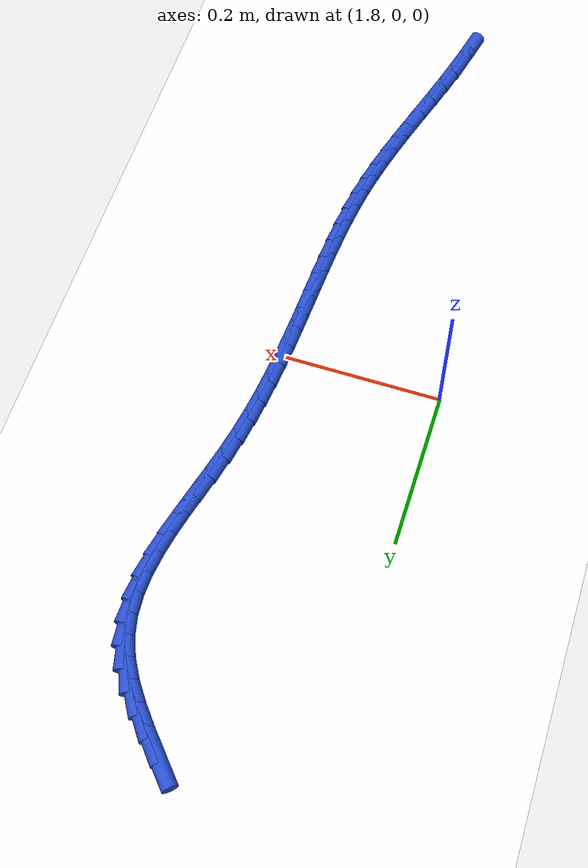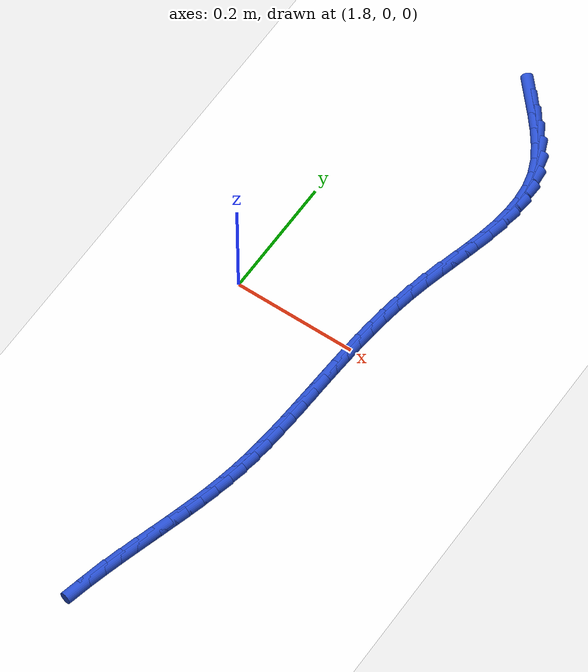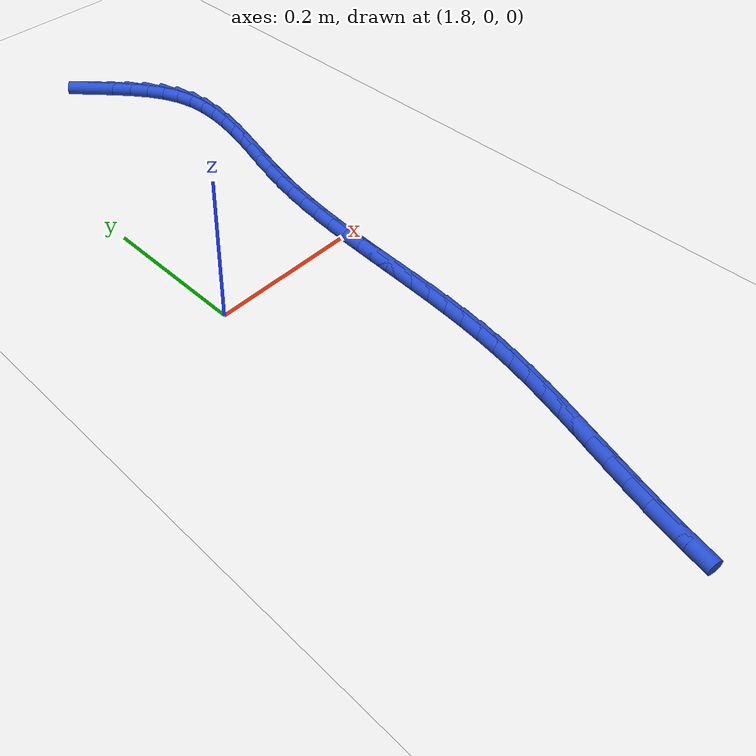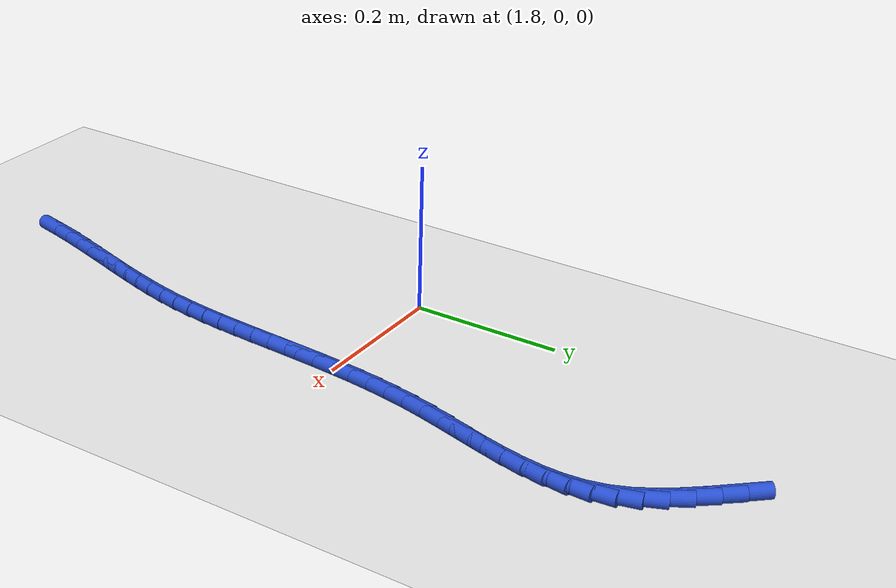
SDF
<sdf version="1.6">
 <world name="default">
  <model name="ground_plane">
   <static>1</static>
   <link name="link">
    <collision name="collision">
     <geometry><plane><normal>0 0 1</normal><size>100 100</size></plane></geometry>
     <surface><friction><ode><mu>100</mu><mu2>50</mu2></ode></friction></surface>
    </collision>
    <visual name="visual">
     <cast_shadows>0</cast_shadows>
     <geometry><plane><normal>0 0 1</normal><size>100 100</size></plane></geometry>
     <material>
      <script><uri>file://media/materials/scripts/gazebo.material</uri><name>Gazebo/WhiteGlow</name></script>
     </material>
    </visual>
   </link>
  </model>
  <model name="line">
   <link name="link_100">
    <pose>1.9794004942073467 0.5174655493958903 0.01 0 1.57 -0.8328999978954689</pose>
    <collision name="collision">
     <geometry><cylinder><radius>0.01</radius><length>0.08</length></cylinder></geometry>
    </collision>
    <visual name="visual">
     <material>
      <script><name>Gazebo/Blue</name><uri>file://media/materials/scripts/gazebo.material</uri></script>
     </material>
     <geometry><cylinder><radius>0.01</radius><length>0.08</length></cylinder></geometry>
    </visual>
   </link>
   <link name="link_101">
    <pose>1.9992368773855778 0.4956490902751773 0.01 0 1.57 -0.8675028361013063</pose>
    <collision name="collision">
     <geometry><cylinder><radius>0.01</radius><length>0.08</length></cylinder></geometry>
    </collision>
    <visual name="visual">
     <material>
      <script><name>Gazebo/Blue</name><uri>file://media/materials/scripts/gazebo.material</uri></script>
     </material>
     <geometry><cylinder><radius>0.01</radius><length>0.08</length></cylinder></geometry>
    </visual>
   </link>
   <link name="link_102">
    <pose>2.0179995701783637 0.47352155422459424 0.01 0 1.57 -0.9322442200639983</pose>
    <collision name="collision">
     <geometry><cylinder><radius>0.01</radius><length>0.08</length></cylinder></geometry>
    </collision>
    <visual name="visual">
     <material>
      <script><name>Gazebo/Blue</name><uri>file://media/materials/scripts/gazebo.material</uri></script>
     </material>
     <geometry><cylinder><radius>0.01</radius><length>0.08</length></cylinder></geometry>
    </visual>
   </link>
   <link name="link_103">
    <pose>2.0348077334677885 0.4508780674210389 0.01 0 1.57 -1.0318191896629265</pose>
    <collision name="collision">
     <geometry><cylinder><radius>0.01</radius><length>0.08</length></cylinder></geometry>
    </collision>
    <visual name="visual">
     <material>
      <script><name>Gazebo/Blue</name><uri>file://media/materials/scripts/gazebo.material</uri></script>
     </material>
     <geometry><cylinder><radius>0.01</radius><length>0.08</length></cylinder></geometry>
    </visual>
   </link>
   <link name="link_104">
    <pose>2.0487805281359344 0.4275137560414088 0.01 0 1.57 -1.1712235007734189</pose>
    <collision name="collision">
     <geometry><cylinder><radius>0.01</radius><length>0.08</length></cylinder></geometry>
    </collision>
    <visual name="visual">
     <material>
      <script><name>Gazebo/Blue</name><uri>file://media/materials/scripts/gazebo.material</uri></script>
     </material>
     <geometry><cylinder><radius>0.01</radius><length>0.08</length></cylinder></geometry>
    </visual>
   </link>
   <link name="link_105">
    <pose>2.0590378778197485 0.40322391940936164 0.01 0 1.57 -1.3371737413123586</pose>
    <collision name="collision">
     <geometry><cylinder><radius>0.01</radius><length>0.08</length></cylinder></geometry>
    </collision>
    <visual name="visual">
     <material>
      <script><name>Gazebo/Blue</name><uri>file://media/materials/scripts/gazebo.material</uri></script>
     </material>
     <geometry><cylinder><radius>0.01</radius><length>0.08</length></cylinder></geometry>
    </visual>
   </link>
   <link name="link_106">
    <pose>2.0650671836213066 0.3778872749100724 0.01 0 1.57 -1.4856037121164003</pose>
    <collision name="collision">
     <geometry><cylinder><radius>0.01</radius><length>0.08</length></cylinder></geometry>
    </collision>
    <visual name="visual">
     <material>
      <script><name>Gazebo/Blue</name><uri>file://media/materials/scripts/gazebo.material</uri></script>
     </material>
     <geometry><cylinder><radius>0.01</radius><length>0.08</length></cylinder></geometry>
    </visual>
   </link>
   <link name="link_107">
    <pose>2.067312131559645 0.3515996183664494 0.01 0 1.57 1.5360547349672506</pose>
    <collision name="collision">
     <geometry><cylinder><radius>0.01</radius><length>0.08</length></cylinder></geometry>
    </collision>
    <visual name="visual">
     <material>
      <script><name>Gazebo/Blue</name><uri>file://media/materials/scripts/gazebo.material</uri></script>
     </material>
     <geometry><cylinder><radius>0.01</radius><length>0.08</length></cylinder></geometry>
    </visual>
   </link>
   <link name="link_108">
    <pose>2.066369976979108 0.3244916061211365 0.01 0 1.57 1.444412673435188</pose>
    <collision name="collision">
     <geometry><cylinder><radius>0.01</radius><length>0.08</length></cylinder></geometry>
    </collision>
    <visual name="visual">
     <material>
      <script><name>Gazebo/Blue</name><uri>file://media/materials/scripts/gazebo.material</uri></script>
     </material>
     <geometry><cylinder><radius>0.01</radius><length>0.08</length></cylinder></geometry>
    </visual>
   </link>
   <link name="link_109">
    <pose>2.062837975224038 0.29669389451677847 0.01 0 1.57 1.378382022537058</pose>
    <collision name="collision">
     <geometry><cylinder><radius>0.01</radius><length>0.08</length></cylinder></geometry>
    </collision>
    <visual name="visual">
     <material>
      <script><name>Gazebo/Blue</name><uri>file://media/materials/scripts/gazebo.material</uri></script>
     </material>
     <geometry><cylinder><radius>0.01</radius><length>0.08</length></cylinder></geometry>
    </visual>
   </link>
   <link name="link_110">
    <pose>2.0573133816387785 0.26833713989601954 0.01 0 1.57 1.3348737533399988</pose>
    <collision name="collision">
     <geometry><cylinder><radius>0.01</radius><length>0.08</length></cylinder></geometry>
    </collision>
    <visual name="visual">
     <material>
      <script><name>Gazebo/Blue</name><uri>file://media/materials/scripts/gazebo.material</uri></script>
     </material>
     <geometry><cylinder><radius>0.01</radius><length>0.08</length></cylinder></geometry>
    </visual>
   </link>
   <link name="link_111">
    <pose>2.050393451567672 0.2395519986015037 0.01 0 1.57 1.3113956046576087</pose>
    <collision name="collision">
     <geometry><cylinder><radius>0.01</radius><length>0.08</length></cylinder></geometry>
    </collision>
    <visual name="visual">
     <material>
      <script><name>Gazebo/Blue</name><uri>file://media/materials/scripts/gazebo.material</uri></script>
     </material>
     <geometry><cylinder><radius>0.01</radius><length>0.08</length></cylinder></geometry>
    </visual>
   </link>
   <link name="link_112">
    <pose>2.0426754403550618 0.21046912697587497 0.01 0 1.57 1.3064042429006386</pose>
    <collision name="collision">
     <geometry><cylinder><radius>0.01</radius><length>0.08</length></cylinder></geometry>
    </collision>
    <visual name="visual">
     <material>
      <script><name>Gazebo/Blue</name><uri>file://media/materials/scripts/gazebo.material</uri></script>
     </material>
     <geometry><cylinder><radius>0.01</radius><length>0.08</length></cylinder></geometry>
    </visual>
   </link>
   <link name="link_113">
    <pose>2.0347566033452904 0.18121918136177825 0.01 0 1.57 1.3193744996362684</pose>
    <collision name="collision">
     <geometry><cylinder><radius>0.01</radius><length>0.08</length></cylinder></geometry>
    </collision>
    <visual name="visual">
     <material>
      <script><name>Gazebo/Blue</name><uri>file://media/materials/scripts/gazebo.material</uri></script>
     </material>
     <geometry><cylinder><radius>0.01</radius><length>0.08</length></cylinder></geometry>
    </visual>
   </link>
   <link name="link_114">
    <pose>2.027234195882701 0.15193281810185744 0.01 0 1.57 1.350084288263122</pose>
    <collision name="collision">
     <geometry><cylinder><radius>0.01</radius><length>0.08</length></cylinder></geometry>
    </collision>
    <visual name="visual">
     <material>
      <script><name>Gazebo/Blue</name><uri>file://media/materials/scripts/gazebo.material</uri></script>
     </material>
     <geometry><cylinder><radius>0.01</radius><length>0.08</length></cylinder></geometry>
    </visual>
   </link>
   <link name="link_115">
    <pose>2.0206836045051695 0.12273696500914132 0.01 0 1.57 1.3872837000156666</pose>
    <collision name="collision">
     <geometry><cylinder><radius>0.01</radius><length>0.08</length></cylinder></geometry>
    </collision>
    <visual name="visual">
     <material>
      <script><name>Gazebo/Blue</name><uri>file://media/materials/scripts/gazebo.material</uri></script>
     </material>
     <geometry><cylinder><radius>0.01</radius><length>0.08</length></cylinder></geometry>
    </visual>
   </link>
   <link name="link_116">
    <pose>2.015292932096982 0.09369251983809475 0.01 0 1.57 1.4205010767851265</pose>
    <collision name="collision">
     <geometry><cylinder><radius>0.01</radius><length>0.08</length></cylinder></geometry>
    </collision>
    <visual name="visual">
     <material>
      <script><name>Gazebo/Blue</name><uri>file://media/materials/scripts/gazebo.material</uri></script>
     </material>
     <geometry><cylinder><radius>0.01</radius><length>0.08</length></cylinder></geometry>
    </visual>
   </link>
   <link name="link_117">
    <pose>2.010918096073409 0.06480374426838093 0.01 0 1.57 1.449097660556877</pose>
    <collision name="collision">
     <geometry><cylinder><radius>0.01</radius><length>0.08</length></cylinder></geometry>
    </collision>
    <visual name="visual">
     <material>
      <script><name>Gazebo/Blue</name><uri>file://media/materials/scripts/gazebo.material</uri></script>
     </material>
     <geometry><cylinder><radius>0.01</radius><length>0.08</length></cylinder></geometry>
    </visual>
   </link>
   <link name="link_118">
    <pose>2.0074042460995414 0.03607306412842457 0.01 0 1.57 1.4728365128259158</pose>
    <collision name="collision">
     <geometry><cylinder><radius>0.01</radius><length>0.08</length></cylinder></geometry>
    </collision>
    <visual name="visual">
     <material>
      <script><name>Gazebo/Blue</name><uri>file://media/materials/scripts/gazebo.material</uri></script>
     </material>
     <geometry><cylinder><radius>0.01</radius><length>0.08</length></cylinder></geometry>
    </visual>
   </link>
   <link name="link_119">
    <pose>2.0045965318404635 0.007502905246649858 0.01 0 1.57 1.4915312010731696</pose>
    <collision name="collision">
     <geometry><cylinder><radius>0.01</radius><length>0.08</length></cylinder></geometry>
    </collision>
    <visual name="visual">
     <material>
      <script><name>Gazebo/Blue</name><uri>file://media/materials/scripts/gazebo.material</uri></script>
     </material>
     <geometry><cylinder><radius>0.01</radius><length>0.08</length></cylinder></geometry>
    </visual>
   </link>
   <link name="link_120">
    <pose>2.002340102961264 -0.020904306548517677 0.01 0 1.57 1.505031785290239</pose>
    <collision name="collision">
     <geometry><cylinder><radius>0.01</radius><length>0.08</length></cylinder></geometry>
    </collision>
    <visual name="visual">
     <material>
      <script><name>Gazebo/Blue</name><uri>file://media/materials/scripts/gazebo.material</uri></script>
     </material>
     <geometry><cylinder><radius>0.01</radius><length>0.08</length></cylinder></geometry>
    </visual>
   </link>
   <link name="link_121">
    <pose>2.0004801091270297 -0.04914614542865376 0.01 0 1.57 1.5132121716717142</pose>
    <collision name="collision">
     <geometry><cylinder><radius>0.01</radius><length>0.08</length></cylinder></geometry>
    </collision>
    <visual name="visual">
     <material>
      <script><name>Gazebo/Blue</name><uri>file://media/materials/scripts/gazebo.material</uri></script>
     </material>
     <geometry><cylinder><radius>0.01</radius><length>0.08</length></cylinder></geometry>
    </visual>
   </link>
   <link name="link_122">
    <pose>1.9988617000028492 -0.0772201855653338 0.01 0 1.57 1.5159601276195291</pose>
    <collision name="collision">
     <geometry><cylinder><radius>0.01</radius><length>0.08</length></cylinder></geometry>
    </collision>
    <visual name="visual">
     <material>
      <script><name>Gazebo/Blue</name><uri>file://media/materials/scripts/gazebo.material</uri></script>
     </material>
     <geometry><cylinder><radius>0.01</radius><length>0.08</length></cylinder></geometry>
    </visual>
   </link>
   <link name="link_123">
    <pose>1.99733002525381 -0.10512400113013314 0.01 0 1.57 1.5131709257031312</pose>
    <collision name="collision">
     <geometry><cylinder><radius>0.01</radius><length>0.08</length></cylinder></geometry>
    </collision>
    <visual name="visual">
     <material>
      <script><name>Gazebo/Blue</name><uri>file://media/materials/scripts/gazebo.material</uri></script>
     </material>
     <geometry><cylinder><radius>0.01</radius><length>0.08</length></cylinder></geometry>
    </visual>
   </link>
   <link name="link_124">
    <pose>1.9957302345449979 -0.13285516629462701 0.01 0 1.57 1.5047453895057048</pose>
    <collision name="collision">
     <geometry><cylinder><radius>0.01</radius><length>0.08</length></cylinder></geometry>
    </collision>
    <visual name="visual">
     <material>
      <script><name>Gazebo/Blue</name><uri>file://media/materials/scripts/gazebo.material</uri></script>
     </material>
     <geometry><cylinder><radius>0.01</radius><length>0.08</length></cylinder></geometry>
    </visual>
   </link>
   <link name="link_125">
    <pose>1.9939074775415024 -0.16041125523039163 0.01 0 1.57 1.4905930215609704</pose>
    <collision name="collision">
     <geometry><cylinder><radius>0.01</radius><length>0.08</length></cylinder></geometry>
    </collision>
    <visual name="visual">
     <material>
      <script><name>Gazebo/Blue</name><uri>file://media/materials/scripts/gazebo.material</uri></script>
     </material>
     <geometry><cylinder><radius>0.01</radius><length>0.08</length></cylinder></geometry>
    </visual>
   </link>
   <link name="link_126">
    <pose>1.99170690390841 -0.1877898421090008 0.01 0 1.57 1.470640825676296</pose>
    <collision name="collision">
     <geometry><cylinder><radius>0.01</radius><length>0.08</length></cylinder></geometry>
    </collision>
    <visual name="visual">
     <material>
      <script><name>Gazebo/Blue</name><uri>file://media/materials/scripts/gazebo.material</uri></script>
     </material>
     <geometry><cylinder><radius>0.01</radius><length>0.08</length></cylinder></geometry>
    </visual>
   </link>
   <link name="link_127">
    <pose>1.9889736633108082 -0.21498850110203052 0.01 0 1.57 1.444848275133955</pose>
    <collision name="collision">
     <geometry><cylinder><radius>0.01</radius><length>0.08</length></cylinder></geometry>
    </collision>
    <visual name="visual">
     <material>
      <script><name>Gazebo/Blue</name><uri>file://media/materials/scripts/gazebo.material</uri></script>
     </material>
     <geometry><cylinder><radius>0.01</radius><length>0.08</length></cylinder></geometry>
    </visual>
   </link>
   <link name="link_128">
    <pose>1.985552905413784 -0.24200480638105618 0.01 0 1.57 1.4132284739852006</pose>
    <collision name="collision">
     <geometry><cylinder><radius>0.01</radius><length>0.08</length></cylinder></geometry>
    </collision>
    <visual name="visual">
     <material>
      <script><name>Gazebo/Blue</name><uri>file://media/materials/scripts/gazebo.material</uri></script>
     </material>
     <geometry><cylinder><radius>0.01</radius><length>0.08</length></cylinder></geometry>
    </visual>
   </link>
   <link name="link_129">
    <pose>1.9812897798824265 -0.26883633211765323 0.01 0 1.57 1.3767831460984143</pose>
    <collision name="collision">
     <geometry><cylinder><radius>0.01</radius><length>0.08</length></cylinder></geometry>
    </collision>
    <visual name="visual">
     <material>
      <script><name>Gazebo/Blue</name><uri>file://media/materials/scripts/gazebo.material</uri></script>
     </material>
     <geometry><cylinder><radius>0.01</radius><length>0.08</length></cylinder></geometry>
    </visual>
   </link>
   <link name="link_130">
    <pose>1.9760534434596648 -0.2954864309871866 0.01 0 1.57 1.3432596376966413</pose>
    <collision name="collision">
     <geometry><cylinder><radius>0.01</radius><length>0.08</length></cylinder></geometry>
    </collision>
    <visual name="visual">
     <material>
      <script><name>Gazebo/Blue</name><uri>file://media/materials/scripts/gazebo.material</uri></script>
     </material>
     <geometry><cylinder><radius>0.01</radius><length>0.08</length></cylinder></geometry>
    </visual>
   </link>
   <link name="link_131">
    <pose>1.9699128059735262 -0.32200653623387626 0.01 0 1.57 1.3165717059089295</pose>
    <collision name="collision">
     <geometry><cylinder><radius>0.01</radius><length>0.08</length></cylinder></geometry>
    </collision>
    <visual name="visual">
     <material>
      <script><name>Gazebo/Blue</name><uri>file://media/materials/scripts/gazebo.material</uri></script>
     </material>
     <geometry><cylinder><radius>0.01</radius><length>0.08</length></cylinder></geometry>
    </visual>
   </link>
   <link name="link_132">
    <pose>1.9630358563418961 -0.34847192943950284 0.01 0 1.57 1.2967921056787124</pose>
    <collision name="collision">
     <geometry><cylinder><radius>0.01</radius><length>0.08</length></cylinder></geometry>
    </collision>
    <visual name="visual">
     <material>
      <script><name>Gazebo/Blue</name><uri>file://media/materials/scripts/gazebo.material</uri></script>
     </material>
     <geometry><cylinder><radius>0.01</radius><length>0.08</length></cylinder></geometry>
    </visual>
   </link>
   <link name="link_133">
    <pose>1.9555912961725725 -0.37495806373031126 0.01 0 1.57 1.283874762217612</pose>
    <collision name="collision">
     <geometry><cylinder><radius>0.01</radius><length>0.08</length></cylinder></geometry>
    </collision>
    <visual name="visual">
     <material>
      <script><name>Gazebo/Blue</name><uri>file://media/materials/scripts/gazebo.material</uri></script>
     </material>
     <geometry><cylinder><radius>0.01</radius><length>0.08</length></cylinder></geometry>
    </visual>
   </link>
   <link name="link_134">
    <pose>1.9477478270733508 -0.40154039223254806 0.01 0 1.57 1.2777120474241581</pose>
    <collision name="collision">
     <geometry><cylinder><radius>0.01</radius><length>0.08</length></cylinder></geometry>
    </collision>
    <visual name="visual">
     <material>
      <script><name>Gazebo/Blue</name><uri>file://media/materials/scripts/gazebo.material</uri></script>
     </material>
     <geometry><cylinder><radius>0.01</radius><length>0.08</length></cylinder></geometry>
    </visual>
   </link>
   <link name="link_135">
    <pose>1.9396741506520285 -0.4282943680724595 0.01 0 1.57 1.27815552086558</pose>
    <collision name="collision">
     <geometry><cylinder><radius>0.01</radius><length>0.08</length></cylinder></geometry>
    </collision>
    <visual name="visual">
     <material>
      <script><name>Gazebo/Blue</name><uri>file://media/materials/scripts/gazebo.material</uri></script>
     </material>
     <geometry><cylinder><radius>0.01</radius><length>0.08</length></cylinder></geometry>
    </visual>
   </link>
   <link name="link_136">
    <pose>1.9315389685164017 -0.45529544437629155 0.01 0 1.57 1.2850270325240583</pose>
    <collision name="collision">
     <geometry><cylinder><radius>0.01</radius><length>0.08</length></cylinder></geometry>
    </collision>
    <visual name="visual">
     <material>
      <script><name>Gazebo/Blue</name><uri>file://media/materials/scripts/gazebo.material</uri></script>
     </material>
     <geometry><cylinder><radius>0.01</radius><length>0.08</length></cylinder></geometry>
    </visual>
   </link>
   <link name="link_137">
    <pose>1.9235109822742682 -0.4826190742702905 0.01 0 1.57 1.2981211388909062</pose>
    <collision name="collision">
     <geometry><cylinder><radius>0.01</radius><length>0.08</length></cylinder></geometry>
    </collision>
    <visual name="visual">
     <material>
      <script><name>Gazebo/Blue</name><uri>file://media/materials/scripts/gazebo.material</uri></script>
     </material>
     <geometry><cylinder><radius>0.01</radius><length>0.08</length></cylinder></geometry>
    </visual>
   </link>
   <link name="link_138">
    <pose>1.915758893533424 -0.5103407108807022 0.01 0 1.57 1.3172003369453935</pose>
    <collision name="collision">
     <geometry><cylinder><radius>0.01</radius><length>0.08</length></cylinder></geometry>
    </collision>
    <visual name="visual">
     <material>
      <script><name>Gazebo/Blue</name><uri>file://media/materials/scripts/gazebo.material</uri></script>
     </material>
     <geometry><cylinder><radius>0.01</radius><length>0.08</length></cylinder></geometry>
    </visual>
   </link>
   <link name="link_139">
    <pose>1.9084514039016658 -0.538535807333773 0.01 0 1.57 1.3419849908156027</pose>
    <collision name="collision">
     <geometry><cylinder><radius>0.01</radius><length>0.08</length></cylinder></geometry>
    </collision>
    <visual name="visual">
     <material>
      <script><name>Gazebo/Blue</name><uri>file://media/materials/scripts/gazebo.material</uri></script>
     </material>
     <geometry><cylinder><radius>0.01</radius><length>0.08</length></cylinder></geometry>
    </visual>
   </link>
  </model>
 </world>
</sdf>
